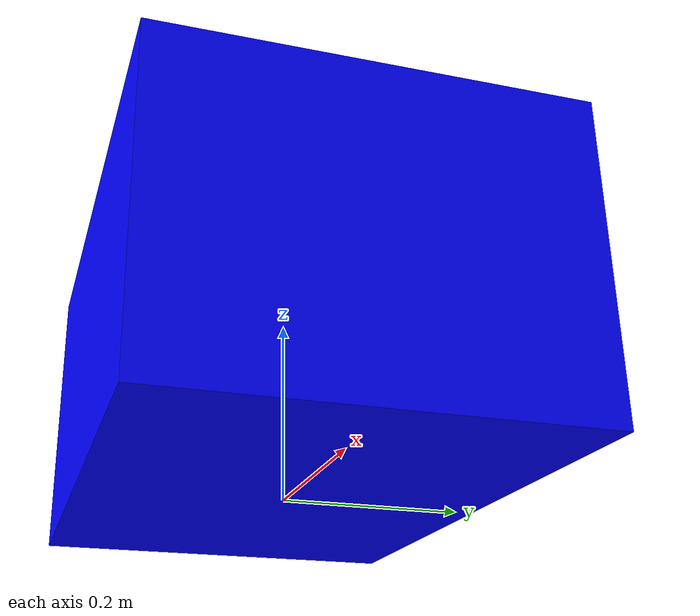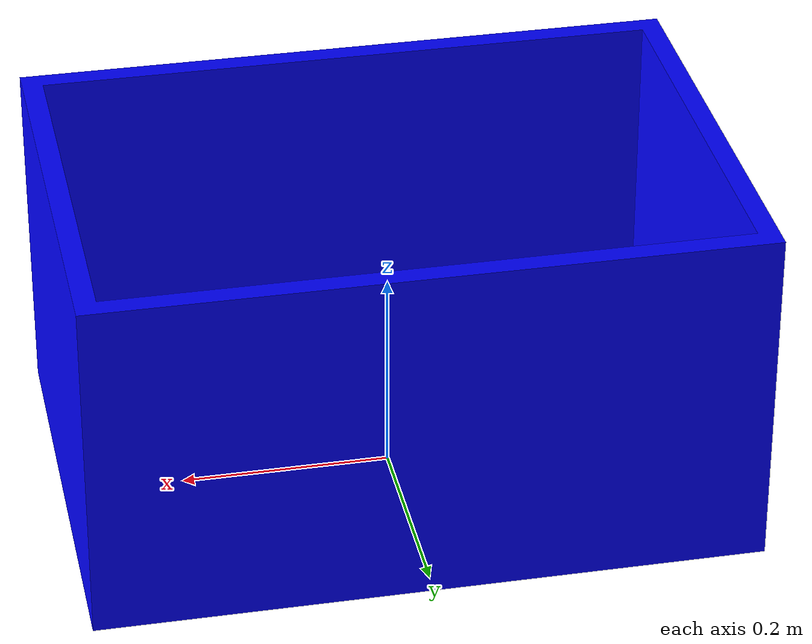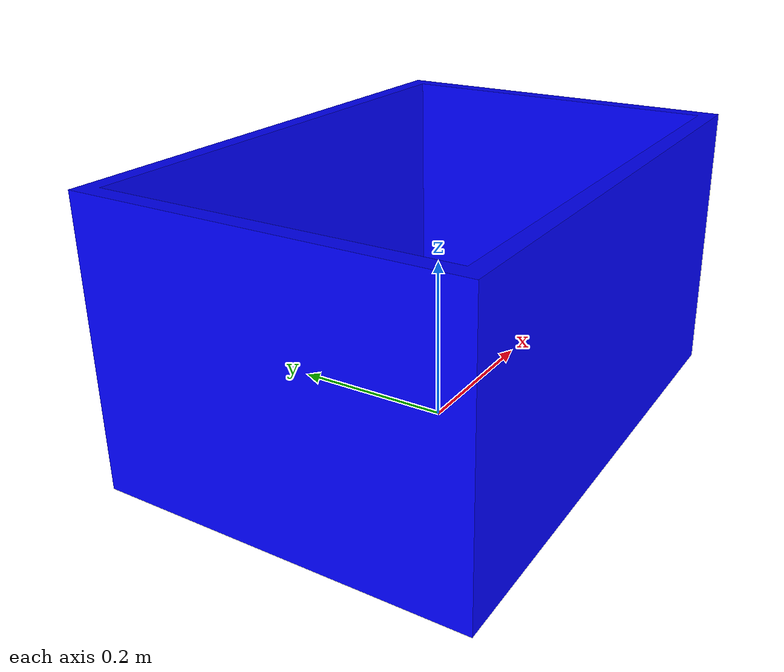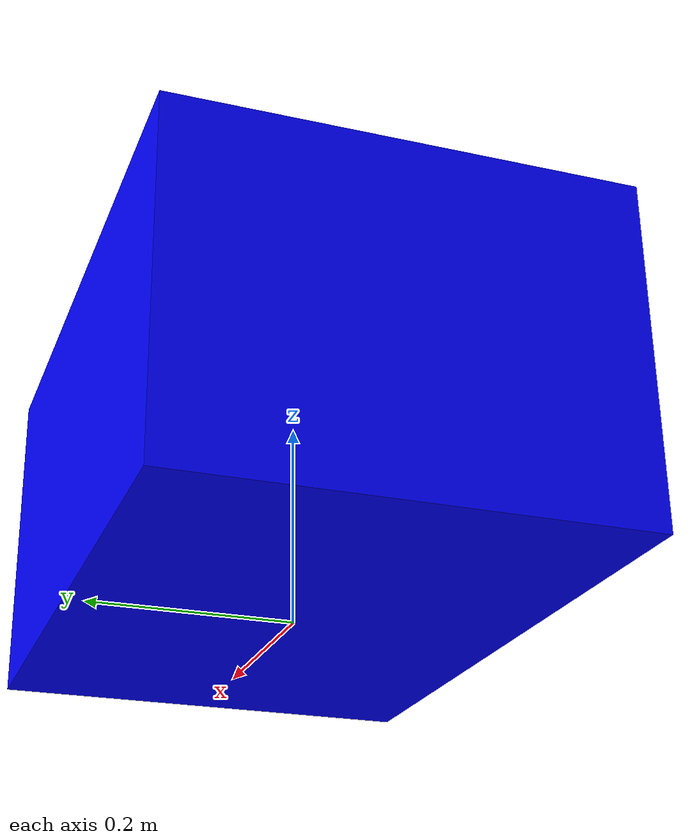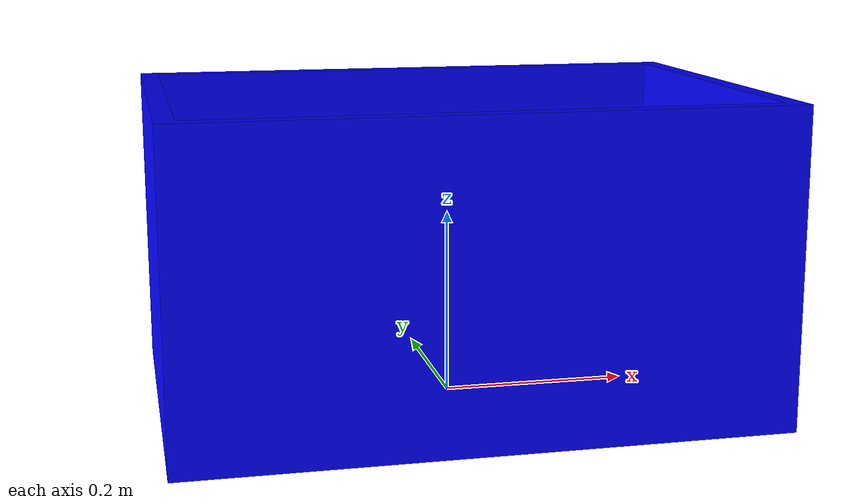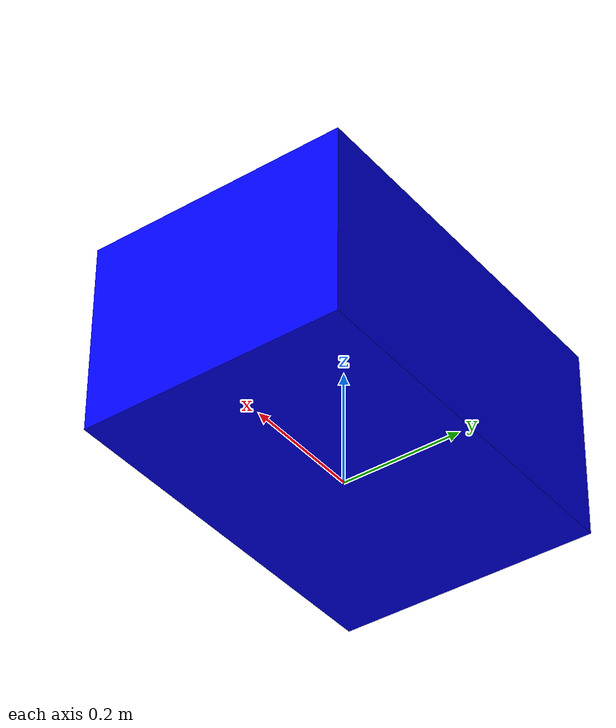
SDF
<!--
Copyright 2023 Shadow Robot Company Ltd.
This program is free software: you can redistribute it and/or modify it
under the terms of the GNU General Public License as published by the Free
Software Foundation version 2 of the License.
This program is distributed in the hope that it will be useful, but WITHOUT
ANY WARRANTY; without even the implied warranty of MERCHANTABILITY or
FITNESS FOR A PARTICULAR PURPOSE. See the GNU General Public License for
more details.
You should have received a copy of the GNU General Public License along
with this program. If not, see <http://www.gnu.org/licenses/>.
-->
<?xml version="1.0" ?>

<sdf version="1.4">
  <model name="tote">
    <static>true</static>
    <link name="link">
      <inertial>
        <mass>1.0</mass>
      </inertial>
      <collision name="collision">
        <pose>0.0 0.0 0.0 0 0.0 0.0</pose>
        <geometry>
          <mesh>
            <uri>model://tote/meshes/tote.stl</uri>
          </mesh>
        </geometry>
      </collision>
      <visual name="visual">
        <pose>0.0 0.0 0.0 0 0.0 0.0</pose>
        <geometry>
          <mesh>
            <uri>model://tote/meshes/tote.stl</uri>
          </mesh>
        </geometry>
        <material>
          <ambient>0 0 1 1</ambient>
          <diffuse>0 0 1 1</diffuse>
          <specular>0.1 0.1 0.1 1</specular>
          <emissive>0 0 0 0</emissive>
        </material>
      </visual>
    </link>
  </model>
</sdf>
